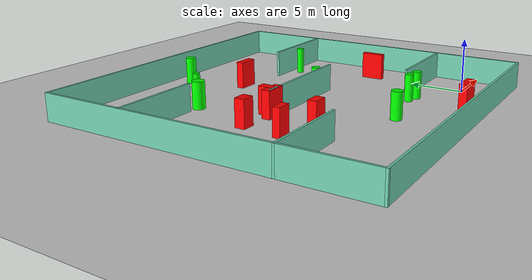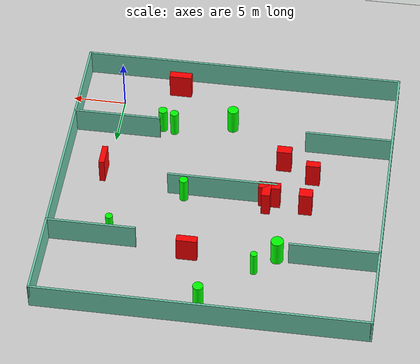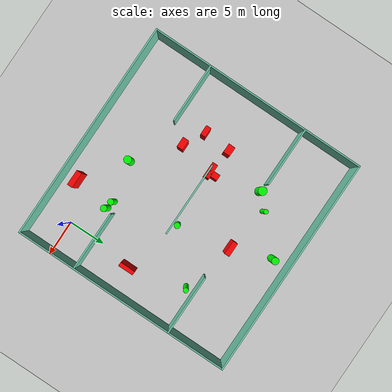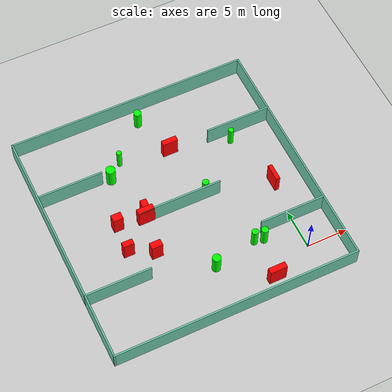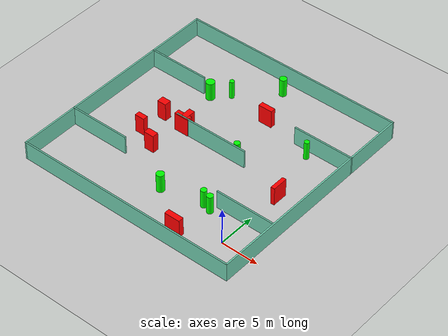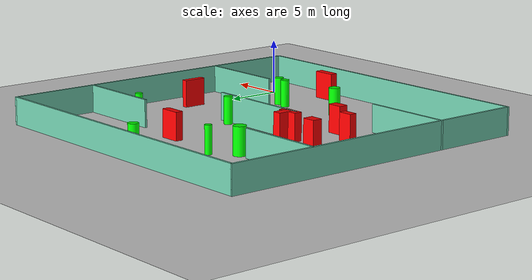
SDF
<sdf version="1.7">
 <world name="default">
  <light name="sun" type="directional">
   <pose>0 0 10 0 -0 0</pose>
   <diffuse>0.8 0.8 0.8 1</diffuse>
   <specular>0.2 0.2 0.2 1</specular>
   <attenuation>
    <range>1000</range>
    <constant>0.9</constant>
    <linear>0.01</linear>
    <quadratic>0.001</quadratic>
   </attenuation>
   <direction>-0.5 0.1 -0.9</direction>
   <spot><inner_angle>0</inner_angle><outer_angle>0</outer_angle><falloff>0</falloff></spot>
  </light>
  <model name="ground_plane">
   <static>1</static>
   <link name="link">
    <collision name="collision">
     <geometry><plane><normal>0 0 1</normal><size>100 100</size></plane></geometry>
     <surface>
      <contact><collide_bitmask>65535</collide_bitmask></contact>
      <friction><ode><mu>100</mu><mu2>50</mu2></ode></friction>
     </surface>
    </collision>
    <visual name="visual">
     <cast_shadows>0</cast_shadows>
     <geometry><plane><normal>0 0 1</normal><size>100 100</size></plane></geometry>
     <material>
      <script><uri>file://media/materials/scripts/gazebo.material</uri><name>Gazebo/Grey</name></script>
     </material>
    </visual>
   </link>
  </model>
  <gravity>0 0 -9.8</gravity>
  <magnetic_field>6e-06 2.3e-05 -4.2e-05</magnetic_field>
  <atmosphere type="adiabatic"/>
  <physics type="ode">
   <max_step_size>0.001</max_step_size>
   <real_time_factor>1</real_time_factor>
   <real_time_update_rate>1000</real_time_update_rate>
  </physics>
  <scene><ambient>0.4 0.4 0.4 1</ambient><background>0.7 0.7 0.7 1</background><shadows>1</shadows></scene>
  <spherical_coordinates>
   <surface_model>EARTH_WGS84</surface_model>
   <latitude_deg>0</latitude_deg>
   <longitude_deg>0</longitude_deg>
   <elevation>0</elevation>
   <heading_deg>0</heading_deg>
  </spherical_coordinates>
  <model name="my_base_walls">
   <link name="Wall_10">
    <collision name="Wall_10_Collision">
     <geometry><box><size>8.2 0.2 2.5</size></box></geometry>
     <pose>0 0 1.25 0 -0 0</pose>
    </collision>
    <visual name="Wall_10_Visual">
     <pose>0 0 1.25 0 -0 0</pose>
     <geometry><box><size>8.2 0.2 2.5</size></box></geometry>
     <material>
      <script><uri>file://media/materials/scripts/gazebo.material</uri><name>Gazebo/Grey</name></script>
      <ambient>0.435294 0.796078 0.67451 1</ambient>
     </material>
     <meta><layer>0</layer></meta>
    </visual>
    <pose>-11 -7 0 0 -0 0</pose>
   </link>
   <link name="Wall_12">
    <collision name="Wall_12_Collision">
     <geometry><box><size>8.2 0.2 2.5</size></box></geometry>
     <pose>0 0 1.25 0 -0 0</pose>
    </collision>
    <visual name="Wall_12_Visual">
     <pose>0 0 1.25 0 -0 0</pose>
     <geometry><box><size>8.2 0.2 2.5</size></box></geometry>
     <material>
      <script><uri>file://media/materials/scripts/gazebo.material</uri><name>Gazebo/Grey</name></script>
      <ambient>0.435294 0.796078 0.67451 1</ambient>
     </material>
     <meta><layer>0</layer></meta>
    </visual>
    <pose>-11 7 0 0 -0 0</pose>
   </link>
   <link name="Wall_14">
    <collision name="Wall_14_Collision">
     <geometry><box><size>8.2 0.2 2.5</size></box></geometry>
     <pose>0 0 1.25 0 -0 0</pose>
    </collision>
    <visual name="Wall_14_Visual">
     <pose>0 0 1.25 0 -0 0</pose>
     <geometry><box><size>8.2 0.2 2.5</size></box></geometry>
     <material>
      <script><uri>file://media/materials/scripts/gazebo.material</uri><name>Gazebo/Grey</name></script>
      <ambient>0.435294 0.796078 0.67451 1</ambient>
     </material>
     <meta><layer>0</layer></meta>
    </visual>
    <pose>11 7 0 0 -0 3.14159</pose>
   </link>
   <link name="Wall_16">
    <collision name="Wall_16_Collision">
     <geometry><box><size>10.2 0.2 2.5</size></box></geometry>
     <pose>0 0 1.25 0 -0 0</pose>
    </collision>
    <visual name="Wall_16_Visual">
     <pose>0 0 1.25 0 -0 0</pose>
     <geometry><box><size>10.2 0.2 2.5</size></box></geometry>
     <material>
      <script><uri>file://media/materials/scripts/gazebo.material</uri><name>Gazebo/Grey</name></script>
      <ambient>0.435294 0.796078 0.67451 1</ambient>
     </material>
     <meta><layer>0</layer></meta>
    </visual>
    <pose>0 0 0 0 -0 3.14159</pose>
   </link>
   <link name="Wall_2">
    <collision name="Wall_2_Collision">
     <geometry><box><size>30.2 0.2 2.5</size></box></geometry>
     <pose>0 0 1.25 0 -0 0</pose>
    </collision>
    <visual name="Wall_2_Visual">
     <pose>0 0 1.25 0 -0 0</pose>
     <geometry><box><size>30.2 0.2 2.5</size></box></geometry>
     <material>
      <script><uri>file://media/materials/scripts/gazebo.material</uri><name>Gazebo/Grey</name></script>
      <ambient>0.435294 0.796078 0.67451 1</ambient>
     </material>
     <meta><layer>0</layer></meta>
    </visual>
    <pose>0 -15 0 0 -0 3.14159</pose>
   </link>
   <link name="Wall_3">
    <collision name="Wall_3_Collision">
     <geometry><box><size>30.2 0.2 2.5</size></box></geometry>
     <pose>0 0 1.25 0 -0 0</pose>
    </collision>
    <visual name="Wall_3_Visual">
     <pose>0 0 1.25 0 -0 0</pose>
     <geometry><box><size>30.2 0.2 2.5</size></box></geometry>
     <material>
      <script><uri>file://media/materials/scripts/gazebo.material</uri><name>Gazebo/Grey</name></script>
      <ambient>0.435294 0.796078 0.67451 1</ambient>
     </material>
     <meta><layer>0</layer></meta>
    </visual>
    <pose>-15 0 0 0 -0 1.5708</pose>
   </link>
   <link name="Wall_4">
    <collision name="Wall_4_Collision">
     <geometry><box><size>30.2 0.2 2.5</size></box></geometry>
     <pose>0 0 1.25 0 -0 0</pose>
    </collision>
    <visual name="Wall_4_Visual">
     <pose>0 0 1.25 0 -0 0</pose>
     <geometry><box><size>30.2 0.2 2.5</size></box></geometry>
     <material>
      <script><uri>file://media/materials/scripts/gazebo.material</uri><name>Gazebo/Grey</name></script>
      <ambient>0.435294 0.796078 0.67451 1</ambient>
     </material>
     <meta><layer>0</layer></meta>
    </visual>
    <pose>0 15 0 0 -0 0</pose>
   </link>
   <link name="Wall_6">
    <collision name="Wall_6_Collision">
     <geometry><box><size>30.2 0.2 2.5</size></box></geometry>
     <pose>0 0 1.25 0 -0 0</pose>
    </collision>
    <visual name="Wall_6_Visual">
     <pose>0 0 1.25 0 -0 0</pose>
     <geometry><box><size>30.2 0.2 2.5</size></box></geometry>
     <material>
      <script><uri>file://media/materials/scripts/gazebo.material</uri><name>Gazebo/Grey</name></script>
      <ambient>0.435294 0.796078 0.67451 1</ambient>
     </material>
     <meta><layer>0</layer></meta>
    </visual>
    <pose>15 0 0 0 -0 1.5708</pose>
   </link>
   <link name="Wall_8">
    <collision name="Wall_8_Collision">
     <geometry><box><size>8.2 0.2 2.5</size></box></geometry>
     <pose>0 0 1.25 0 -0 0</pose>
    </collision>
    <visual name="Wall_8_Visual">
     <pose>0 0 1.25 0 -0 0</pose>
     <geometry><box><size>8.2 0.2 2.5</size></box></geometry>
     <material>
      <script><uri>file://media/materials/scripts/gazebo.material</uri><name>Gazebo/Grey</name></script>
      <ambient>0.435294 0.796078 0.67451 1</ambient>
     </material>
     <meta><layer>0</layer></meta>
    </visual>
    <pose>11 -7 0 0 -0 3.14159</pose>
   </link>
   <static>1</static>
   <pose>-11 11 0 0 -0 0</pose>
  </model>
  <model name="cylinder1">
   <static>1</static>
   <link name="link">
    <inertial>
     <mass>1</mass>
     <inertia><ixx>0.5</ixx><ixy>0</ixy><ixz>0</ixz><iyy>0.5</iyy><iyz>0</iyz><izz>1</izz></inertia>
    </inertial>
    <collision name="collision">
     <geometry><cylinder><radius>0.5709586585897586</radius><length>2.5</length></cylinder></geometry>
    </collision>
    <visual name="visual">
     <geometry><cylinder><radius>0.5709586585897586</radius><length>2.5</length></cylinder></geometry>
     <material>
      <ambient>0 1 0 1</ambient>
      <diffuse>0 1 0 1</diffuse>
      <specular>0.1 0.1 0.1 1</specular>
      <emissive>0 0 0 0</emissive>
     </material>
    </visual>
   </link>
   <pose>-16.856477637512512 17.85815435863495 1.25 0 0 0</pose>
  </model>
  <model name="cylinder2">
   <static>1</static>
   <link name="link">
    <inertial>
     <mass>1</mass>
     <inertia><ixx>0.5</ixx><ixy>0</ixy><ixz>0</ixz><iyy>0.5</iyy><iyz>0</iyz><izz>1</izz></inertia>
    </inertial>
    <collision name="collision">
     <geometry><cylinder><radius>0.3928131896527942</radius><length>2.5</length></cylinder></geometry>
    </collision>
    <visual name="visual">
     <geometry><cylinder><radius>0.3928131896527942</radius><length>2.5</length></cylinder></geometry>
     <material>
      <ambient>0 1 0 1</ambient>
      <diffuse>0 1 0 1</diffuse>
      <specular>0.1 0.1 0.1 1</specular>
      <emissive>0 0 0 0</emissive>
     </material>
    </visual>
   </link>
   <pose>-5.332204579235276 3.169114253884434 1.25 0 0 0</pose>
  </model>
  <model name="cylinder3">
   <static>1</static>
   <link name="link">
    <inertial>
     <mass>1</mass>
     <inertia><ixx>0.5</ixx><ixy>0</ixy><ixz>0</ixz><iyy>0.5</iyy><iyz>0</iyz><izz>1</izz></inertia>
    </inertial>
    <collision name="collision">
     <geometry><cylinder><radius>0.5098529124515407</radius><length>2.5</length></cylinder></geometry>
    </collision>
    <visual name="visual">
     <geometry><cylinder><radius>0.5098529124515407</radius><length>2.5</length></cylinder></geometry>
     <material>
      <ambient>0 1 0 1</ambient>
      <diffuse>0 1 0 1</diffuse>
      <specular>0.1 0.1 0.1 1</specular>
      <emissive>0 0 0 0</emissive>
     </material>
    </visual>
   </link>
   <pose>-10.779663231336066 2.0005344431550744 1.25 0 0 0</pose>
  </model>
  <model name="cylinder4">
   <static>1</static>
   <link name="link">
    <inertial>
     <mass>1</mass>
     <inertia><ixx>0.5</ixx><ixy>0</ixy><ixz>0</ixz><iyy>0.5</iyy><iyz>0</iyz><izz>1</izz></inertia>
    </inertial>
    <collision name="collision">
     <geometry><cylinder><radius>0.33223197104124325</radius><length>2.5</length></cylinder></geometry>
    </collision>
    <visual name="visual">
     <geometry><cylinder><radius>0.33223197104124325</radius><length>2.5</length></cylinder></geometry>
     <material>
      <ambient>0 1 0 1</ambient>
      <diffuse>0 1 0 1</diffuse>
      <specular>0.1 0.1 0.1 1</specular>
      <emissive>0 0 0 0</emissive>
     </material>
    </visual>
   </link>
   <pose>-1.5112846862934077 16.881704888232658 1.25 0 0 0</pose>
  </model>
  <model name="cylinder5">
   <static>1</static>
   <link name="link">
    <inertial>
     <mass>1</mass>
     <inertia><ixx>0.5</ixx><ixy>0</ixy><ixz>0</ixz><iyy>0.5</iyy><iyz>0</iyz><izz>1</izz></inertia>
    </inertial>
    <collision name="collision">
     <geometry><cylinder><radius>0.4211352941950444</radius><length>2.5</length></cylinder></geometry>
    </collision>
    <visual name="visual">
     <geometry><cylinder><radius>0.4211352941950444</radius><length>2.5</length></cylinder></geometry>
     <material>
      <ambient>0 1 0 1</ambient>
      <diffuse>0 1 0 1</diffuse>
      <specular>0.1 0.1 0.1 1</specular>
      <emissive>0 0 0 0</emissive>
     </material>
    </visual>
   </link>
   <pose>-4.202442764872096 2.9093123533427256 1.25 0 0 0</pose>
  </model>
  <model name="cylinder6">
   <static>1</static>
   <link name="link">
    <inertial>
     <mass>1</mass>
     <inertia><ixx>0.5</ixx><ixy>0</ixy><ixz>0</ixz><iyy>0.5</iyy><iyz>0</iyz><izz>1</izz></inertia>
    </inertial>
    <collision name="collision">
     <geometry><cylinder><radius>0.4698527570301476</radius><length>2.5</length></cylinder></geometry>
    </collision>
    <visual name="visual">
     <geometry><cylinder><radius>0.4698527570301476</radius><length>2.5</length></cylinder></geometry>
     <material>
      <ambient>0 1 0 1</ambient>
      <diffuse>0 1 0 1</diffuse>
      <specular>0.1 0.1 0.1 1</specular>
      <emissive>0 0 0 0</emissive>
     </material>
    </visual>
   </link>
   <pose>-10.61964660758668 23.95725563052671 1.25 0 0 0</pose>
  </model>
  <model name="cylinder7">
   <static>1</static>
   <link name="link">
    <inertial>
     <mass>1</mass>
     <inertia><ixx>0.5</ixx><ixy>0</ixy><ixz>0</ixz><iyy>0.5</iyy><iyz>0</iyz><izz>1</izz></inertia>
    </inertial>
    <collision name="collision">
     <geometry><cylinder><radius>0.3934272873709625</radius><length>2.5</length></cylinder></geometry>
    </collision>
    <visual name="visual">
     <geometry><cylinder><radius>0.3934272873709625</radius><length>2.5</length></cylinder></geometry>
     <material>
      <ambient>0 1 0 1</ambient>
      <diffuse>0 1 0 1</diffuse>
      <specular>0.1 0.1 0.1 1</specular>
      <emissive>0 0 0 0</emissive>
     </material>
    </visual>
   </link>
   <pose>-7.495179284465525 11.56361977441579 1.25 0 0 0</pose>
  </model>
  <model name="cylinder8">
   <static>1</static>
   <link name="link">
    <inertial>
     <mass>1</mass>
     <inertia><ixx>0.5</ixx><ixy>0</ixy><ixz>0</ixz><iyy>0.5</iyy><iyz>0</iyz><izz>1</izz></inertia>
    </inertial>
    <collision name="collision">
     <geometry><cylinder><radius>0.30930870623435597</radius><length>2.5</length></cylinder></geometry>
    </collision>
    <visual name="visual">
     <geometry><cylinder><radius>0.30930870623435597</radius><length>2.5</length></cylinder></geometry>
     <material>
      <ambient>0 1 0 1</ambient>
      <diffuse>0 1 0 1</diffuse>
      <specular>0.1 0.1 0.1 1</specular>
      <emissive>0 0 0 0</emissive>
     </material>
    </visual>
   </link>
   <pose>-14.98291398189523 19.62481875822844 1.25 0 0 0</pose>
  </model>
  <model name="box1">
   <static>1</static>
   <link name="link">
    <inertial>
     <mass>1</mass>
     <inertia><ixx>0.083</ixx><ixy>0</ixy><ixz>0</ixz><iyy>0.083</iyy><iyz>0</iyz><izz>0.083</izz></inertia>
    </inertial>
    <collision name="collision">
     <geometry><box><size>1.316414487178419 0.6882899723965824 2.5</size></box></geometry>
    </collision>
    <visual name="visual">
     <geometry><box><size>1.316414487178419 0.6882899723965824 2.5</size></box></geometry>
     <material>
      <ambient>1 0 0 1</ambient>
      <diffuse>1 0 0 1</diffuse>
      <specular>0.1 0.1 0.1 1</specular>
      <emissive>0 0 0 0</emissive>
     </material>
    </visual>
    <sensor name="my_contact" type="contact">
     <contact><collision>box_collision</collision><topic>__default_topic__</topic></contact>
    </sensor>
   </link>
   <pose>-19.033378894792857 7.993393026279035 1.25 0 0 0</pose>
  </model>
  <model name="box2">
   <static>1</static>
   <link name="link">
    <inertial>
     <mass>1</mass>
     <inertia><ixx>0.083</ixx><ixy>0</ixy><ixz>0</ixz><iyy>0.083</iyy><iyz>0</iyz><izz>0.083</izz></inertia>
    </inertial>
    <collision name="collision">
     <geometry><box><size>2.0100847334024454 0.7707586245094993 2.5</size></box></geometry>
    </collision>
    <visual name="visual">
     <geometry><box><size>2.0100847334024454 0.7707586245094993 2.5</size></box></geometry>
     <material>
      <ambient>1 0 0 1</ambient>
      <diffuse>1 0 0 1</diffuse>
      <specular>0.1 0.1 0.1 1</specular>
      <emissive>0 0 0 0</emissive>
     </material>
    </visual>
    <sensor name="my_contact" type="contact">
     <contact><collision>box_collision</collision><topic>__default_topic__</topic></contact>
    </sensor>
   </link>
   <pose>-15.377042508131066 11.19879318448966 1.25 0 0 0</pose>
  </model>
  <model name="box3">
   <static>1</static>
   <link name="link">
    <inertial>
     <mass>1</mass>
     <inertia><ixx>0.083</ixx><ixy>0</ixy><ixz>0</ixz><iyy>0.083</iyy><iyz>0</iyz><izz>0.083</izz></inertia>
    </inertial>
    <collision name="collision">
     <geometry><box><size>0.7871702812135899 1.4045445588384944 2.5</size></box></geometry>
    </collision>
    <visual name="visual">
     <geometry><box><size>0.7871702812135899 1.4045445588384944 2.5</size></box></geometry>
     <material>
      <ambient>1 0 0 1</ambient>
      <diffuse>1 0 0 1</diffuse>
      <specular>0.1 0.1 0.1 1</specular>
      <emissive>0 0 0 0</emissive>
     </material>
    </visual>
    <sensor name="my_contact" type="contact">
     <contact><collision>box_collision</collision><topic>__default_topic__</topic></contact>
    </sensor>
   </link>
   <pose>-15.144877118194179 11.811399879054031 1.25 0 0 0</pose>
  </model>
  <model name="box4">
   <static>1</static>
   <link name="link">
    <inertial>
     <mass>1</mass>
     <inertia><ixx>0.083</ixx><ixy>0</ixy><ixz>0</ixz><iyy>0.083</iyy><iyz>0</iyz><izz>0.083</izz></inertia>
    </inertial>
    <collision name="collision">
     <geometry><box><size>2.0991774255693603 0.7280686024158344 2.5</size></box></geometry>
    </collision>
    <visual name="visual">
     <geometry><box><size>2.0991774255693603 0.7280686024158344 2.5</size></box></geometry>
     <material>
      <ambient>1 0 0 1</ambient>
      <diffuse>1 0 0 1</diffuse>
      <specular>0.1 0.1 0.1 1</specular>
      <emissive>0 0 0 0</emissive>
     </material>
    </visual>
    <sensor name="my_contact" type="contact">
     <contact><collision>box_collision</collision><topic>__default_topic__</topic></contact>
    </sensor>
   </link>
   <pose>-5.178815145520922 -2.05901877604051 1.25 0 0 0</pose>
  </model>
  <model name="box5">
   <static>1</static>
   <link name="link">
    <inertial>
     <mass>1</mass>
     <inertia><ixx>0.083</ixx><ixy>0</ixy><ixz>0</ixz><iyy>0.083</iyy><iyz>0</iyz><izz>0.083</izz></inertia>
    </inertial>
    <collision name="collision">
     <geometry><box><size>1.3744504739961707 0.8436970563494957 2.5</size></box></geometry>
    </collision>
    <visual name="visual">
     <geometry><box><size>1.3744504739961707 0.8436970563494957 2.5</size></box></geometry>
     <material>
      <ambient>1 0 0 1</ambient>
      <diffuse>1 0 0 1</diffuse>
      <specular>0.1 0.1 0.1 1</specular>
      <emissive>0 0 0 0</emissive>
     </material>
    </visual>
    <sensor name="my_contact" type="contact">
     <contact><collision>box_collision</collision><topic>__default_topic__</topic></contact>
    </sensor>
   </link>
   <pose>-16.19922470539393 6.507122138707132 1.25 0 0 0</pose>
  </model>
  <model name="box6">
   <static>1</static>
   <link name="link">
    <inertial>
     <mass>1</mass>
     <inertia><ixx>0.083</ixx><ixy>0</ixy><ixz>0</ixz><iyy>0.083</iyy><iyz>0</iyz><izz>0.083</izz></inertia>
    </inertial>
    <collision name="collision">
     <geometry><box><size>0.5216207011282613 2.085585255693304 2.5</size></box></geometry>
    </collision>
    <visual name="visual">
     <geometry><box><size>0.5216207011282613 2.085585255693304 2.5</size></box></geometry>
     <material>
      <ambient>1 0 0 1</ambient>
      <diffuse>1 0 0 1</diffuse>
      <specular>0.1 0.1 0.1 1</specular>
      <emissive>0 0 0 0</emissive>
     </material>
    </visual>
    <sensor name="my_contact" type="contact">
     <contact><collision>box_collision</collision><topic>__default_topic__</topic></contact>
    </sensor>
   </link>
   <pose>0.3459311970023684 9.384750478145385 1.25 0 0 0</pose>
  </model>
  <model name="box7">
   <static>1</static>
   <link name="link">
    <inertial>
     <mass>1</mass>
     <inertia><ixx>0.083</ixx><ixy>0</ixy><ixz>0</ixz><iyy>0.083</iyy><iyz>0</iyz><izz>0.083</izz></inertia>
    </inertial>
    <collision name="collision">
     <geometry><box><size>1.8899186033226405 0.6877097930110131 2.5</size></box></geometry>
    </collision>
    <visual name="visual">
     <geometry><box><size>1.8899186033226405 0.6877097930110131 2.5</size></box></geometry>
     <material>
      <ambient>1 0 0 1</ambient>
      <diffuse>1 0 0 1</diffuse>
      <specular>0.1 0.1 0.1 1</specular>
      <emissive>0 0 0 0</emissive>
     </material>
    </visual>
    <sensor name="my_contact" type="contact">
     <contact><collision>box_collision</collision><topic>__default_topic__</topic></contact>
    </sensor>
   </link>
   <pose>-8.832883700250836 18.642355953138306 1.25 0 0 0</pose>
  </model>
  <model name="box8">
   <static>1</static>
   <link name="link">
    <inertial>
     <mass>1</mass>
     <inertia><ixx>0.083</ixx><ixy>0</ixy><ixz>0</ixz><iyy>0.083</iyy><iyz>0</iyz><izz>0.083</izz></inertia>
    </inertial>
    <collision name="collision">
     <geometry><box><size>1.2240182134565352 0.938359219230612 2.5</size></box></geometry>
    </collision>
    <visual name="visual">
     <geometry><box><size>1.2240182134565352 0.938359219230612 2.5</size></box></geometry>
     <material>
      <ambient>1 0 0 1</ambient>
      <diffuse>1 0 0 1</diffuse>
      <specular>0.1 0.1 0.1 1</specular>
      <emissive>0 0 0 0</emissive>
     </material>
    </visual>
    <sensor name="my_contact" type="contact">
     <contact><collision>box_collision</collision><topic>__default_topic__</topic></contact>
    </sensor>
   </link>
   <pose>-18.751046878747267 11.667188352495788 1.25 0 0 0</pose>
  </model>
 </world>
</sdf>
